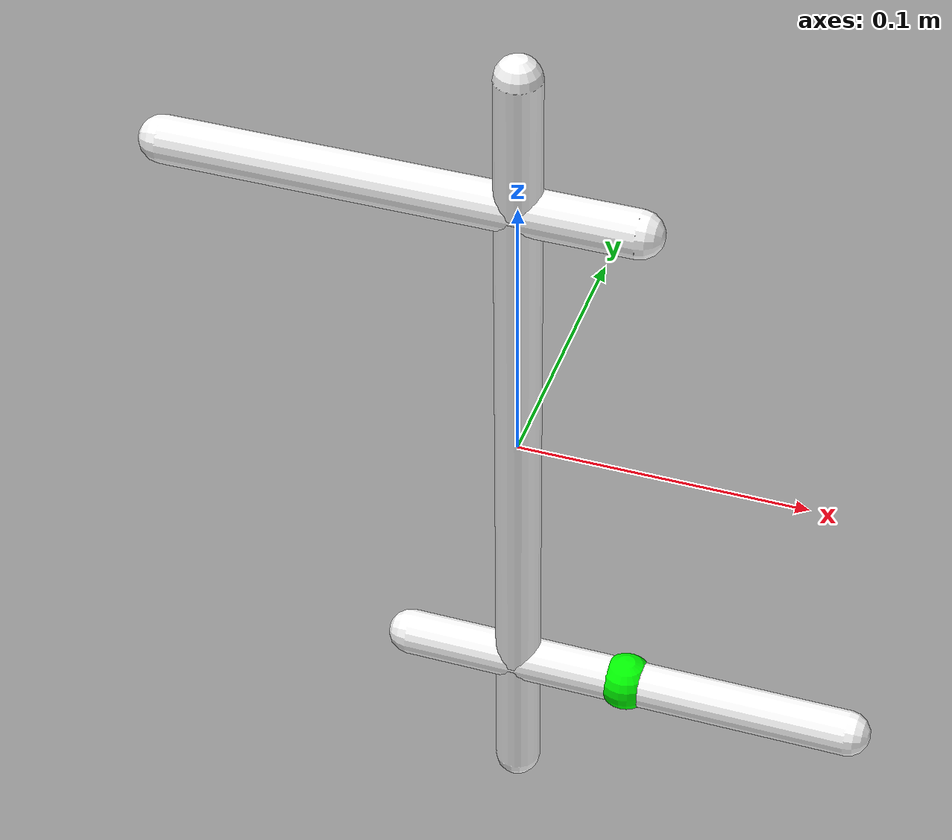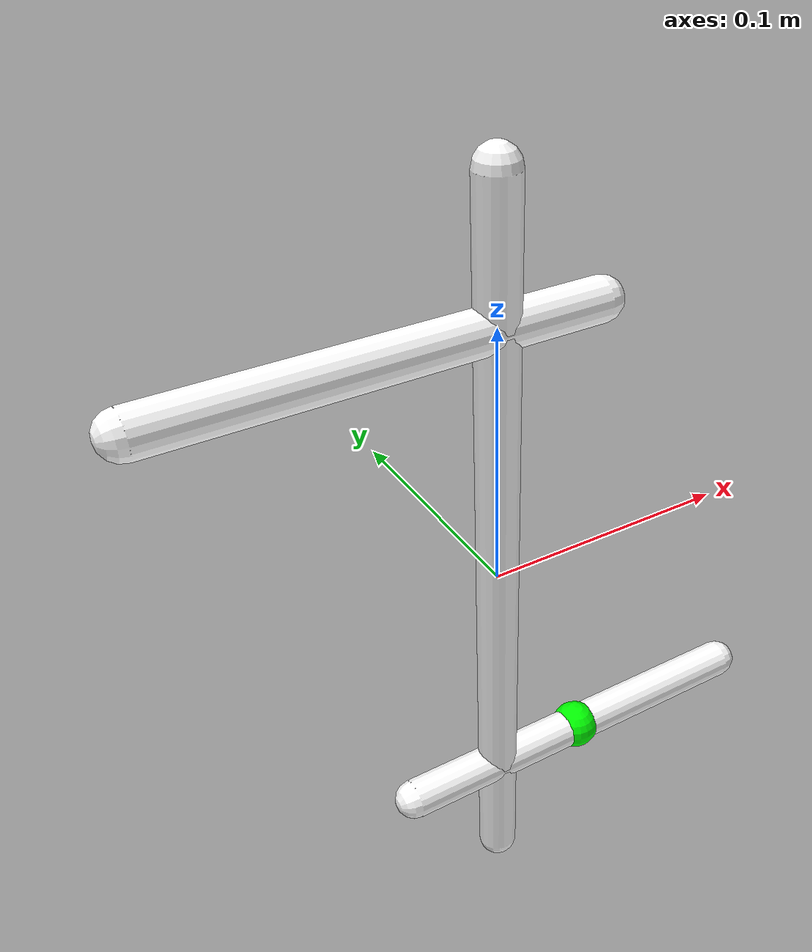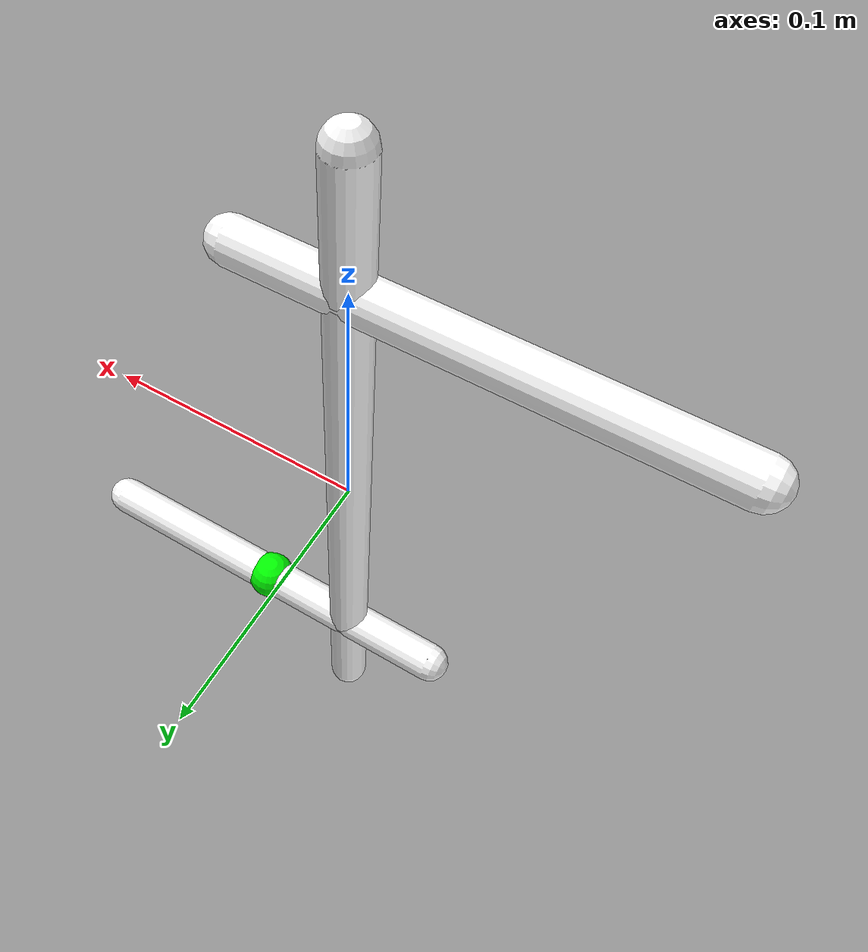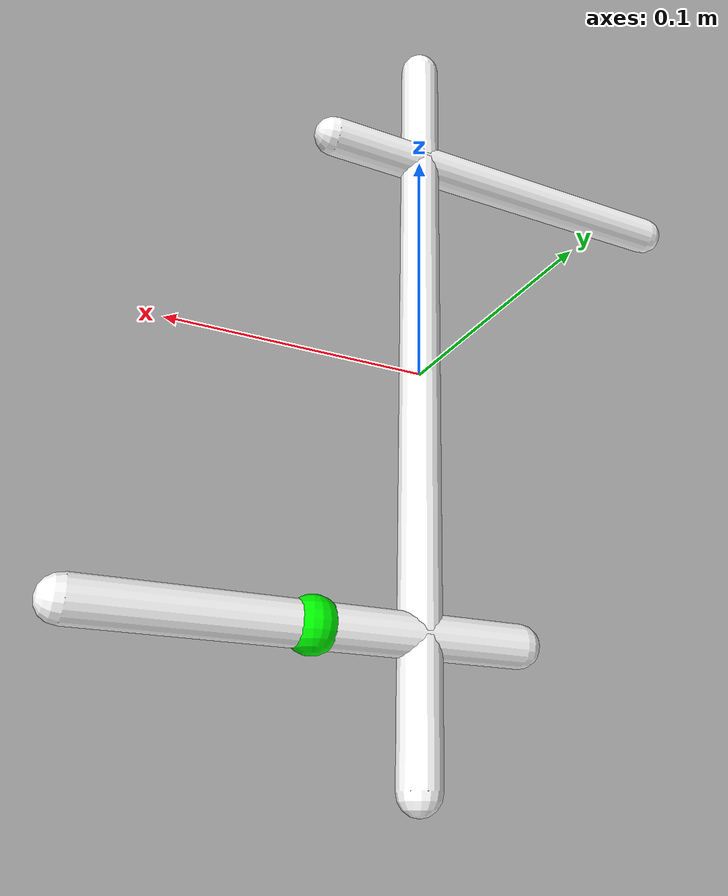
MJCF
<?xml version="1.0" encoding="utf-8"?>
<mujoco>
    <compiler angle="radian" coordinate="local" meshdir="../stls/hand" texturedir="../textures"/>
    <option timestep="0.002" iterations="20" apirate="200">
        <flag warmstart="enable"/>
    </option>

    <include file="shared.xml"/>

    <asset>
        <include file="shared_asset.xml"/>
        <material name="material:object" specular="0" shininess="0.5" reflectance="0.0" rgba="1.0 1.0 1.0 1.0"/>
        <material name="material:target" specular="0" shininess="0.5" reflectance="0.0" rgba="0.46 0.81 0.88 0.5"/>
    </asset>

    <worldbody>
        <!-- Base body for the rigid rope -->
        <body name="robot0:attached_rope" pos="0 0 0">
            <joint name="attached_rope_joint" type="free"/>
            <inertial pos="0 0 0" mass="0.02" diaginertia="0.0001 0.0001 0.0001"/>

            <!-- Z-shaped rope structure -->
            <geom name="z_diagonal" type="capsule" size="0.008 0.15" pos="0 0 0" euler="0 0 -0.7854" material="material:object" condim="4"/>
            <geom name="z_top" type="capsule" size="0.008 0.08" pos="-0.04 0 0.1" euler="0 1.5708 0" material="material:object" condim="4"/>
            <geom name="z_bottom" type="capsule" size="0.008 0.08" pos="0.04 0 -0.1" euler="0 1.5708 0" material="material:object" condim="4"/>

            <site name="rope:center" pos="0 0 0" rgba="1 0 0 0" size="0.01 0.01 0.01"/>
            <site name="rope:grasp" pos="0.04 0 -0.1" size="0.01" rgba="0 1 0 1"/>
        </body>

        <light directional="true" ambient="0.2 0.2 0.2"
               diffuse="0.8 0.8 0.8" specular="0.3 0.3 0.3"
               castshadow="false" pos="0 1 4" dir="0 0 -1" name="light0"/>
    </worldbody>
    <!-- HARD ATTACH rope to robot0:palm -->
    <equality>
        <weld body1="robot0:palm" body2="attached_rope" relpose="0 0 0 1 0 0 0"/>
    </equality>
</mujoco>

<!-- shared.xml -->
<!-- See LICENSE.md for legal notices. LICENSE.md must be kept together with this file. -->
<mujoco>
    <size njmax="500" nconmax="100" nuser_jnt="1" nuser_site="1" nuser_tendon="1" nuser_sensor="1" nuser_actuator="16" nstack="600000"></size>

    <visual>
        <map fogstart="3" fogend="5" force="0.1"></map>
        <quality shadowsize="4096"></quality>
    </visual>

    <default>
        <default class="robot0:asset_class">
            <geom friction="1 0.005 0.001" condim="3" margin="0.0005" contype="1" conaffinity="1"></geom>
            <joint limited="true" damping="0.1" armature="0.001" margin="0.01" frictionloss="0.001"></joint>
            <site size="0.005" rgba="0.4 0.9 0.4 1"></site>
            <general ctrllimited="true" forcelimited="true"></general>
        </default>
        <default class="robot0:D_Touch">
            <site type="box" size="0.009 0.004 0.013" pos="0 -0.004 0.018" rgba="0.8 0.8 0.8 0.15" group="4"></site>
        </default>
        <default class="robot0:DC_Hand">
            <geom material="robot0:MatColl" contype="1" conaffinity="0" group="4"></geom>
        </default>
        <default class="robot0:D_Vizual">
            <geom material="robot0:MatViz" contype="0" conaffinity="0" group="1" type="mesh"></geom>
        </default>
        <default class="robot0:free">
            <joint type="free" damping="0" armature="0" limited="false"></joint>
        </default>
    </default>

    <contact>
        <pair geom1="robot0:C_ffdistal" geom2="robot0:C_thdistal" condim="1"></pair>
        <pair geom1="robot0:C_ffmiddle" geom2="robot0:C_thdistal" condim="1"></pair>
        <pair geom1="robot0:C_ffproximal" geom2="robot0:C_thdistal" condim="1"></pair>
        <pair geom1="robot0:C_mfproximal" geom2="robot0:C_thdistal" condim="1"></pair>
        <pair geom1="robot0:C_mfdistal" geom2="robot0:C_thdistal" condim="1"></pair>
        <pair geom1="robot0:C_rfdistal" geom2="robot0:C_thdistal" condim="1"></pair>
        <pair geom1="robot0:C_lfdistal" geom2="robot0:C_thdistal" condim="1"></pair>
        <pair geom1="robot0:C_palm0" geom2="robot0:C_thdistal" condim="1"></pair>
        <pair geom1="robot0:C_mfdistal" geom2="robot0:C_ffdistal" condim="1"></pair>
        <pair geom1="robot0:C_rfdistal" geom2="robot0:C_mfdistal" condim="1"></pair>
        <pair geom1="robot0:C_lfdistal" geom2="robot0:C_rfdistal" condim="1"></pair>
        <pair geom1="robot0:C_mfproximal" geom2="robot0:C_ffproximal" condim="1"></pair>
        <pair geom1="robot0:C_rfproximal" geom2="robot0:C_mfproximal" condim="1"></pair>
        <pair geom1="robot0:C_lfproximal" geom2="robot0:C_rfproximal" condim="1"></pair>
        <pair geom1="robot0:C_lfdistal" geom2="robot0:C_rfdistal" condim="1"></pair>
        <pair geom1="robot0:C_lfdistal" geom2="robot0:C_mfdistal" condim="1"></pair>
        <pair geom1="robot0:C_lfdistal" geom2="robot0:C_rfmiddle" condim="1"></pair>
        <pair geom1="robot0:C_lfmiddle" geom2="robot0:C_rfdistal" condim="1"></pair>
        <pair geom1="robot0:C_lfmiddle" geom2="robot0:C_rfmiddle" condim="1"></pair>
    </contact>

    <tendon>
        <fixed name="robot0:T_FFJ1c" limited="true" range="-0.001 0.001">
            <joint joint="robot0:FFJ0" coef="0.00705"></joint>
            <joint joint="robot0:FFJ1" coef="-0.00805"></joint>
        </fixed>
        <fixed name="robot0:T_MFJ1c" limited="true" range="-0.001 0.001">
            <joint joint="robot0:MFJ0" coef="0.00705"></joint>
            <joint joint="robot0:MFJ1" coef="-0.00805"></joint>
        </fixed>
        <fixed name="robot0:T_RFJ1c" limited="true" range="-0.001 0.001">
            <joint joint="robot0:RFJ0" coef="0.00705"></joint>
            <joint joint="robot0:RFJ1" coef="-0.00805"></joint>
        </fixed>
        <fixed name="robot0:T_LFJ1c" limited="true" range="-0.001 0.001">
            <joint joint="robot0:LFJ0" coef="0.00705"></joint>
            <joint joint="robot0:LFJ1" coef="-0.00805"></joint>
        </fixed>

    </tendon>

    <sensor>
        <jointpos name="robot0:Sjp_WRJ1" joint="robot0:WRJ1"></jointpos>
        <jointpos name="robot0:Sjp_WRJ0" joint="robot0:WRJ0"></jointpos>
        <jointpos name="robot0:Sjp_FFJ3" joint="robot0:FFJ3"></jointpos>
        <jointpos name="robot0:Sjp_FFJ2" joint="robot0:FFJ2"></jointpos>
        <jointpos name="robot0:Sjp_FFJ1" joint="robot0:FFJ1"></jointpos>
        <jointpos name="robot0:Sjp_FFJ0" joint="robot0:FFJ0"></jointpos>
        <jointpos name="robot0:Sjp_MFJ3" joint="robot0:MFJ3"></jointpos>
        <jointpos name="robot0:Sjp_MFJ2" joint="robot0:MFJ2"></jointpos>
        <jointpos name="robot0:Sjp_MFJ1" joint="robot0:MFJ1"></jointpos>
        <jointpos name="robot0:Sjp_MFJ0" joint="robot0:MFJ0"></jointpos>
        <jointpos name="robot0:Sjp_RFJ3" joint="robot0:RFJ3"></jointpos>
        <jointpos name="robot0:Sjp_RFJ2" joint="robot0:RFJ2"></jointpos>
        <jointpos name="robot0:Sjp_RFJ1" joint="robot0:RFJ1"></jointpos>
        <jointpos name="robot0:Sjp_RFJ0" joint="robot0:RFJ0"></jointpos>
        <jointpos name="robot0:Sjp_LFJ4" joint="robot0:LFJ4"></jointpos>
        <jointpos name="robot0:Sjp_LFJ3" joint="robot0:LFJ3"></jointpos>
        <jointpos name="robot0:Sjp_LFJ2" joint="robot0:LFJ2"></jointpos>
        <jointpos name="robot0:Sjp_LFJ1" joint="robot0:LFJ1"></jointpos>
        <jointpos name="robot0:Sjp_LFJ0" joint="robot0:LFJ0"></jointpos>
        <jointpos name="robot0:Sjp_THJ4" joint="robot0:THJ4"></jointpos>
        <jointpos name="robot0:Sjp_THJ3" joint="robot0:THJ3"></jointpos>
        <jointpos name="robot0:Sjp_THJ2" joint="robot0:THJ2"></jointpos>
        <jointpos name="robot0:Sjp_THJ1" joint="robot0:THJ1"></jointpos>
        <jointpos name="robot0:Sjp_THJ0" joint="robot0:THJ0"></jointpos>
        <touch name="robot0:ST_Tch_fftip" site="robot0:Tch_fftip"></touch>
        <touch name="robot0:ST_Tch_mftip" site="robot0:Tch_mftip"></touch>
        <touch name="robot0:ST_Tch_rftip" site="robot0:Tch_rftip"></touch>
        <touch name="robot0:ST_Tch_lftip" site="robot0:Tch_lftip"></touch>
        <touch name="robot0:ST_Tch_thtip" site="robot0:Tch_thtip"></touch>
    </sensor>

    <actuator>
        <position name="robot0:A_WRJ1" class="robot0:asset_class" user="2038" joint="robot0:WRJ1" ctrlrange="-0.489 0.14" kp="5" forcerange="-4.785 4.785"></position>
        <position name="robot0:A_WRJ0" class="robot0:asset_class" user="2036" joint="robot0:WRJ0" ctrlrange="-0.698 0.489" kp="5" forcerange="-2.175 2.175"></position>
        <position name="robot0:A_FFJ3" class="robot0:asset_class" user="2004" joint="robot0:FFJ3" ctrlrange="-0.349 0.349" kp="1" forcerange="-0.9 0.9"></position>
        <position name="robot0:A_FFJ2" class="robot0:asset_class" user="2002" joint="robot0:FFJ2" ctrlrange="0 1.571" kp="1" forcerange="-0.9 0.9"></position>
        <position name="robot0:A_FFJ1" class="robot0:asset_class" user="2000" joint="robot0:FFJ1" ctrlrange="0 1.571" kp="1" forcerange="-0.7245 0.7245"></position>
        <position name="robot0:A_MFJ3" class="robot0:asset_class" user="2010" joint="robot0:MFJ3" ctrlrange="-0.349 0.349" kp="1" forcerange="-0.9 0.9"></position>
        <position name="robot0:A_MFJ2" class="robot0:asset_class" user="2008" joint="robot0:MFJ2" ctrlrange="0 1.571" kp="1" forcerange="-0.9 0.9"></position>
        <position name="robot0:A_MFJ1" class="robot0:asset_class" user="2006" joint="robot0:MFJ1" ctrlrange="0 1.571" kp="1" forcerange="-0.7245 0.7245"></position>
        <position name="robot0:A_RFJ3" class="robot0:asset_class" user="2016" joint="robot0:RFJ3" ctrlrange="-0.349 0.349" kp="1" forcerange="-0.9 0.9"></position>
        <position name="robot0:A_RFJ2" class="robot0:asset_class" user="2014" joint="robot0:RFJ2" ctrlrange="0 1.571" kp="1" forcerange="-0.9 0.9"></position>
        <position name="robot0:A_RFJ1" class="robot0:asset_class" user="2012" joint="robot0:RFJ1" ctrlrange="0 1.571" kp="1" forcerange="-0.7245 0.7245"></position>
        <position name="robot0:A_LFJ4" class="robot0:asset_class" user="2024" joint="robot0:LFJ4" ctrlrange="0 0.785" kp="1" forcerange="-0.9 0.9"></position>
        <position name="robot0:A_LFJ3" class="robot0:asset_class" user="2022" joint="robot0:LFJ3" ctrlrange="-0.349 0.349" kp="1" forcerange="-0.9 0.9"></position>
        <position name="robot0:A_LFJ2" class="robot0:asset_class" user="2020" joint="robot0:LFJ2" ctrlrange="0 1.571" kp="1" forcerange="-0.9 0.9"></position>
        <position name="robot0:A_LFJ1" class="robot0:asset_class" user="2018" joint="robot0:LFJ1" ctrlrange="0 1.571" kp="1" forcerange="-0.7245 0.7245"></position>
        <position name="robot0:A_THJ4" class="robot0:asset_class" user="2034" joint="robot0:THJ4" ctrlrange="-1.047 1.047" kp="1" forcerange="-2.3722 2.3722"></position>
        <position name="robot0:A_THJ3" class="robot0:asset_class" user="2032" joint="robot0:THJ3" ctrlrange="0 1.222" kp="1" forcerange="-1.45 1.45"></position>
        <position name="robot0:A_THJ2" class="robot0:asset_class" user="2030" joint="robot0:THJ2" ctrlrange="-0.209 0.209" kp="1" forcerange="-0.99 0.99"></position>
        <position name="robot0:A_THJ1" class="robot0:asset_class" user="2028" joint="robot0:THJ1" ctrlrange="-0.524 0.524" kp="1" forcerange="-0.99 0.99"></position>
        <position name="robot0:A_THJ0" class="robot0:asset_class" user="2026" joint="robot0:THJ0" ctrlrange="-1.571 0" kp="1" forcerange="-0.81 0.81"></position>
    </actuator>
</mujoco>

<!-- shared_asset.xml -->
<!-- See LICENSE.md for legal notices. LICENSE.md must be kept together with this file. -->
<mujoco>
    <texture type="skybox" builtin="gradient" rgb1="0.44 0.85 0.56" rgb2="0.46 0.87 0.58" width="32" height="32"></texture>

    <texture name="robot0:texplane" type="2d" builtin="checker" rgb1="0.2 0.3 0.4" rgb2="0.1 0.15 0.2" width="512" height="512"></texture>
    <texture name="robot0:texgeom" type="cube" builtin="flat" mark="cross" width="127" height="127" rgb1="0.3 0.6 0.5" rgb2="0.3 0.6 0.5" markrgb="0 0 0" random="0.01"></texture>

    <material name="robot0:MatGnd" reflectance="0.5" texture="robot0:texplane" texrepeat="1 1" texuniform="true"></material>
    <material name="robot0:MatColl" specular="1" shininess="0.3" reflectance="0.5" rgba="0.4 0.5 0.6 1"></material>
    <material name="robot0:MatViz" specular="0.75" shininess="0.1" reflectance="0.5" rgba="0.93 0.93 0.93 1"></material>
    <material name="robot0:object" texture="robot0:texgeom" texuniform="false"></material>
    <material name="floor_mat" specular="0" shininess="0.5" reflectance="0" rgba="0.2 0.2 0.2 0"></material>

    <mesh name="robot0:forearm" file="forearm_electric.stl"></mesh>
    <mesh name="robot0:forearm_cvx" file="forearm_electric_cvx.stl"></mesh>
    <mesh name="robot0:wrist" scale="0.001 0.001 0.001" file="wrist.stl"></mesh>
    <mesh name="robot0:palm" scale="0.001 0.001 0.001" file="palm.stl"></mesh>
    <mesh name="robot0:knuckle" scale="0.001 0.001 0.001" file="knuckle.stl"></mesh>
    <mesh name="robot0:F3" scale="0.001 0.001 0.001" file="F3.stl"></mesh>
    <mesh name="robot0:F2" scale="0.001 0.001 0.001" file="F2.stl"></mesh>
    <mesh name="robot0:F1" scale="0.001 0.001 0.001" file="F1.stl"></mesh>
    <mesh name="robot0:lfmetacarpal" scale="0.001 0.001 0.001" file="lfmetacarpal.stl"></mesh>
    <mesh name="robot0:TH3_z" scale="0.001 0.001 0.001" file="TH3_z.stl"></mesh>
    <mesh name="robot0:TH2_z" scale="0.001 0.001 0.001" file="TH2_z.stl"></mesh>
    <mesh name="robot0:TH1_z" scale="0.001 0.001 0.001" file="TH1_z.stl"></mesh>
</mujoco>
